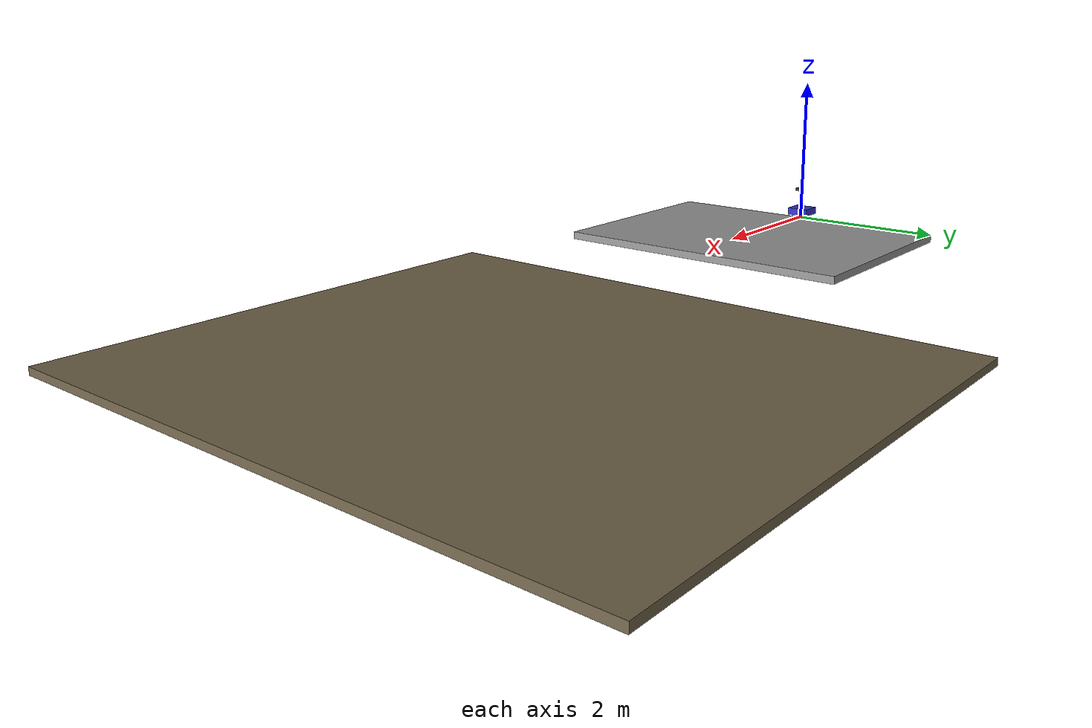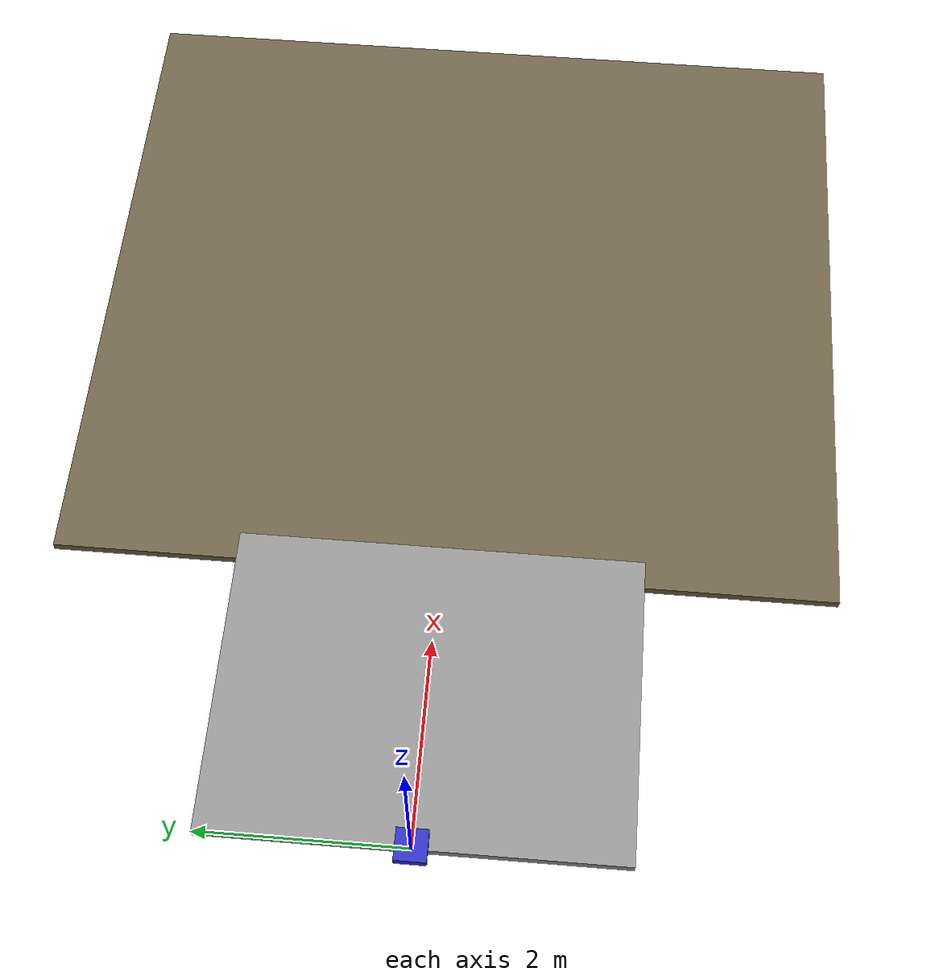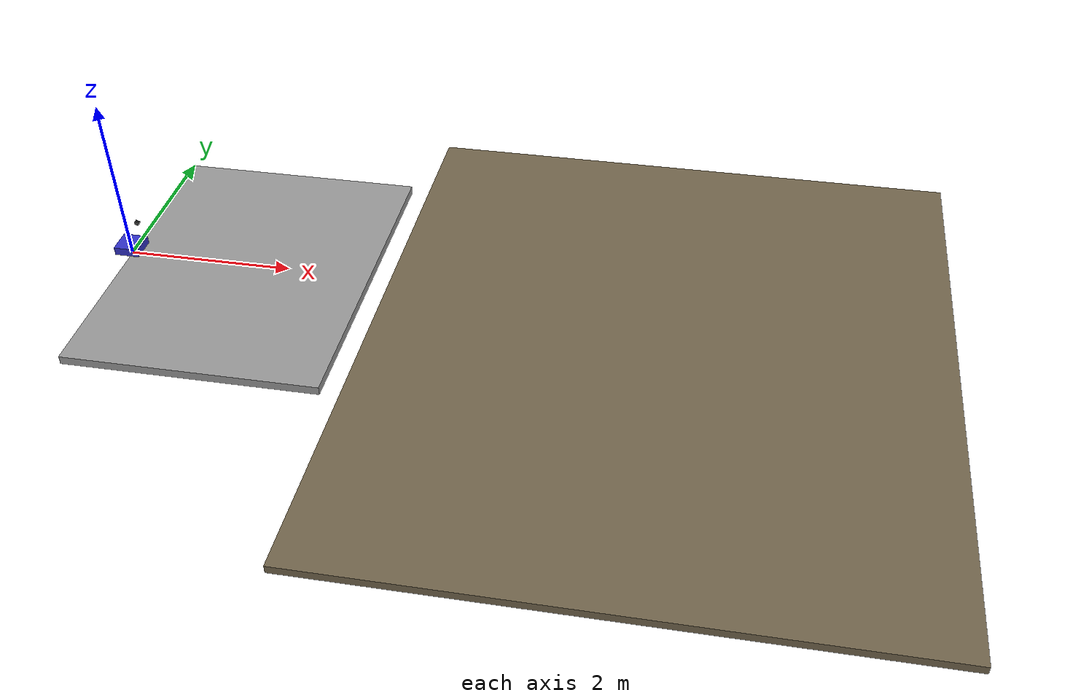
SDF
<?xml version="1.0" ?>
<sdf version="1.9">
  <world name="platform_edge">

    <physics name="default" type="ode">
      <max_step_size>0.001</max_step_size>
      <real_time_factor>1.0</real_time_factor>
    </physics>

    <!-- Zorunlu world-level pluginler (Gazebo Harmonic) -->
    <plugin filename="gz-sim-physics-system"
            name="gz::sim::systems::Physics"/>
    <plugin filename="gz-sim-sensors-system"
            name="gz::sim::systems::Sensors">
      <render_engine>ogre2</render_engine>
    </plugin>
    <plugin filename="gz-sim-scene-broadcaster-system"
            name="gz::sim::systems::SceneBroadcaster"/>

    <light name="sun" type="directional">
      <cast_shadows>true</cast_shadows>
      <pose>0 0 10 0 0 0</pose>
      <diffuse>0.8 0.8 0.8 1</diffuse>
      <specular>0.2 0.2 0.2 1</specular>
      <direction>-0.5 0.1 -0.9</direction>
    </light>

    <!-- Platform yüzeyi: z=0, x=[0, 3], y=[-2, 2] -->
    <model name="platform">
      <static>true</static>
      <pose>1.5 0 -0.05 0 0 0</pose>
      <link name="link">
        <collision name="collision">
          <geometry><box><size>3.0 4.0 0.1</size></box></geometry>
        </collision>
        <visual name="visual">
          <geometry><box><size>3.0 4.0 0.1</size></box></geometry>
          <material>
            <ambient>0.60 0.60 0.60 1</ambient>
            <diffuse>0.60 0.60 0.60 1</diffuse>
          </material>
        </visual>
      </link>
    </model>

    <!-- Alt zemin: z=-0.6 (60cm düşüş), x=[3, 10] -->
    <model name="lower_ground">
      <static>true</static>
      <pose>6.5 0 -0.65 0 0 0</pose>
      <link name="link">
        <collision name="collision">
          <geometry><box><size>7.0 8.0 0.1</size></box></geometry>
        </collision>
        <visual name="visual">
          <geometry><box><size>7.0 8.0 0.1</size></box></geometry>
          <material>
            <ambient>0.40 0.35 0.25 1</ambient>
            <diffuse>0.45 0.40 0.30 1</diffuse>
          </material>
        </visual>
      </link>
    </model>

    <!--
      Kamera platformu
      camera_link pose: x=0.15, y=0, z=0.45, pitch=0.349 rad (~20°)
    -->
    <model name="depth_camera_rig">
      <static>true</static>
      <pose>0 0 0 0 0 0</pose>

      <link name="base_link">
        <pose>0 0 0.1 0 0 0</pose>
        <inertial>
          <mass>1.0</mass>
          <inertia><ixx>0.1</ixx><iyy>0.1</iyy><izz>0.1</izz></inertia>
        </inertial>
        <visual name="base_visual">
          <geometry><box><size>0.3 0.3 0.1</size></box></geometry>
          <material><ambient>0.2 0.2 0.8 1</ambient></material>
        </visual>
      </link>

      <link name="camera_link">
        <pose>0.15 0 0.45 0 0.349 0</pose>
        <visual name="camera_visual">
          <geometry><box><size>0.05 0.05 0.03</size></box></geometry>
          <material><ambient>0.1 0.1 0.1 1</ambient></material>
        </visual>

        <sensor name="depth_camera" type="depth_camera">
          <update_rate>15</update_rate>
          <always_on>true</always_on>
          <visualize>false</visualize>
          <camera>
            <horizontal_fov>1.2217</horizontal_fov>
            <image>
              <width>320</width>
              <height>240</height>
              <format>R_FLOAT32</format>
            </image>
            <clip>
              <near>0.10</near>
              <far>10.0</far>
            </clip>
            <noise>
              <type>gaussian</type>
              <mean>0.0</mean>
              <stddev>0.01</stddev>
            </noise>
          </camera>
          <topic>camera/depth</topic>
        </sensor>
      </link>

      <joint name="camera_joint" type="fixed">
        <parent>base_link</parent>
        <child>camera_link</child>
      </joint>
    </model>

  </world>
</sdf>
